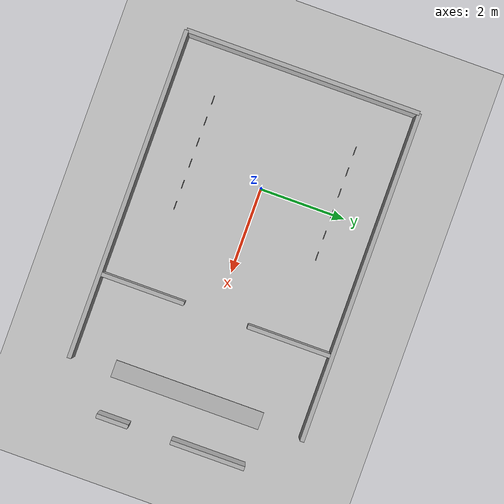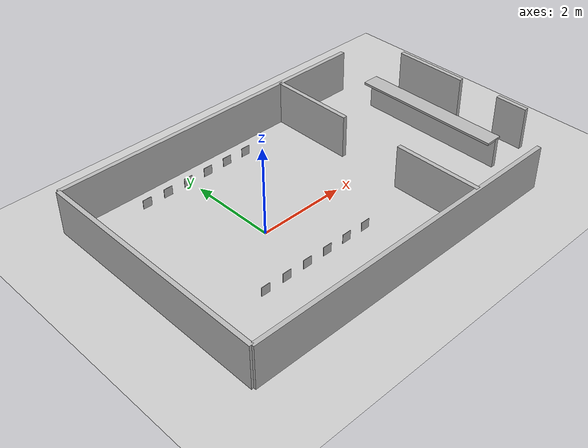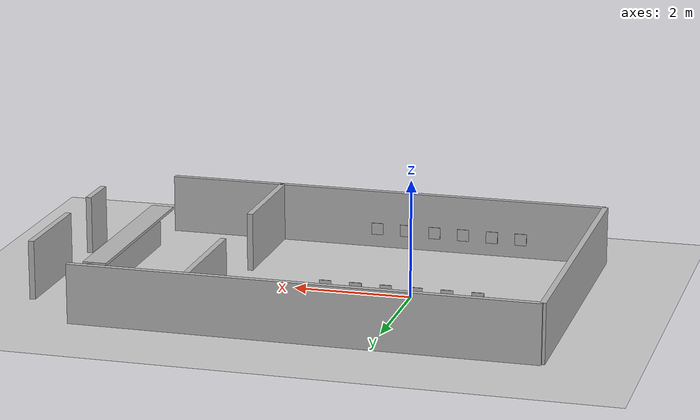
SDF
<sdf version="1.4">
 <world name="stockroom">
  <include><uri>model://sun</uri></include>
  <include><uri>model://ground_plane</uri></include>
  <model name="dhbeam_0_tag">
   <static>true</static>
   <pose>-1.5 -1.6875 0.63 0 0 3.1415</pose>
   <link name="link">
    <visual name="visual">
     <geometry><box><size>0.2 0.01 0.2</size></box></geometry>
     <material><script><uri>model://dhbeam/tags</uri><name>product_0</name></script></material>
    </visual>
   </link>
  </model>
  <model name="dhbeam_1_tag">
   <static>true</static>
   <pose>-1.0 -1.6875 0.63 0 0 3.1415</pose>
   <link name="link">
    <visual name="visual">
     <geometry><box><size>0.2 0.01 0.2</size></box></geometry>
     <material><script><uri>model://dhbeam/tags</uri><name>product_1</name></script></material>
    </visual>
   </link>
  </model>
  <model name="dhbeam_2_tag">
   <static>true</static>
   <pose>-0.5 -1.6875 0.63 0 0 3.1415</pose>
   <link name="link">
    <visual name="visual">
     <geometry><box><size>0.2 0.01 0.2</size></box></geometry>
     <material><script><uri>model://dhbeam/tags</uri><name>product_2</name></script></material>
    </visual>
   </link>
  </model>
  <model name="dhbeam_3_tag">
   <static>true</static>
   <pose>0.0 -1.6875 0.63 0 0 3.1415</pose>
   <link name="link">
    <visual name="visual">
     <geometry><box><size>0.2 0.01 0.2</size></box></geometry>
     <material><script><uri>model://dhbeam/tags</uri><name>product_3</name></script></material>
    </visual>
   </link>
  </model>
  <model name="dhbeam_4_tag">
   <static>true</static>
   <pose>0.5 -1.6875 0.63 0 0 3.1415</pose>
   <link name="link">
    <visual name="visual">
     <geometry><box><size>0.2 0.01 0.2</size></box></geometry>
     <material><script><uri>model://dhbeam/tags</uri><name>product_4</name></script></material>
    </visual>
   </link>
  </model>
  <model name="dhbeam_5_tag">
   <static>true</static>
   <pose>1.0 -1.6875 0.63 0 0 3.1415</pose>
   <link name="link">
    <visual name="visual">
     <geometry><box><size>0.2 0.01 0.2</size></box></geometry>
     <material><script><uri>model://dhbeam/tags</uri><name>product_5</name></script></material>
    </visual>
   </link>
  </model>
  <model name="dhbeam_6_tag">
   <static>true</static>
   <pose>-1.5 1.6875 0.63 0 0 0</pose>
   <link name="link">
    <visual name="visual">
     <geometry><box><size>0.2 0.01 0.2</size></box></geometry>
     <material><script><uri>model://dhbeam/tags</uri><name>product_6</name></script></material>
    </visual>
   </link>
  </model>
  <model name="dhbeam_7_tag">
   <static>true</static>
   <pose>-1.0 1.6875 0.63 0 0 0</pose>
   <link name="link">
    <visual name="visual">
     <geometry><box><size>0.2 0.01 0.2</size></box></geometry>
     <material><script><uri>model://dhbeam/tags</uri><name>product_7</name></script></material>
    </visual>
   </link>
  </model>
  <model name="dhbeam_8_tag">
   <static>true</static>
   <pose>-0.5 1.6875 0.63 0 0 0</pose>
   <link name="link">
    <visual name="visual">
     <geometry><box><size>0.2 0.01 0.2</size></box></geometry>
     <material><script><uri>model://dhbeam/tags</uri><name>product_8</name></script></material>
    </visual>
   </link>
  </model>
  <model name="dhbeam_9_tag">
   <static>true</static>
   <pose>0.0 1.6875 0.63 0 0 0</pose>
   <link name="link">
    <visual name="visual">
     <geometry><box><size>0.2 0.01 0.2</size></box></geometry>
     <material><script><uri>model://dhbeam/tags</uri><name>product_9</name></script></material>
    </visual>
   </link>
  </model>
  <model name="dhbeam_10_tag">
   <static>true</static>
   <pose>0.5 1.6875 0.63 0 0 0</pose>
   <link name="link">
    <visual name="visual">
     <geometry><box><size>0.2 0.01 0.2</size></box></geometry>
     <material><script><uri>model://dhbeam/tags</uri><name>product_10</name></script></material>
    </visual>
   </link>
  </model>
  <model name="dhbeam_11_tag">
   <static>true</static>
   <pose>1.0 1.6875 0.63 0 0 0</pose>
   <link name="link">
    <visual name="visual">
     <geometry><box><size>0.2 0.01 0.2</size></box></geometry>
     <material><script><uri>model://dhbeam/tags</uri><name>product_11</name></script></material>
    </visual>
   </link>
  </model>
  <model name="wall_1">
   <static>true</static>
   <pose>1.125 -2.75 0.5 0 0 0</pose>
   <link name="link">
    <collision name="collision"><geometry><box><size>7.75 0.1 1</size></box></geometry></collision>
    <visual name="visual"><geometry><box><size>7.75 0.1 1</size></box></geometry></visual>
   </link>
  </model>
  <model name="wall_2">
   <static>true</static>
   <pose>-2.75 0.0 0.5 0 0 0</pose>
   <link name="link">
    <collision name="collision"><geometry><box><size>0.1 5.5 1</size></box></geometry></collision>
    <visual name="visual"><geometry><box><size>0.1 5.5 1</size></box></geometry></visual>
   </link>
  </model>
  <model name="wall_3">
   <static>true</static>
   <pose>1.125 2.75 0.5 0 0 0</pose>
   <link name="link">
    <collision name="collision"><geometry><box><size>7.75 0.1 1</size></box></geometry></collision>
    <visual name="visual"><geometry><box><size>7.75 0.1 1</size></box></geometry></visual>
   </link>
  </model>
  <model name="wall_4">
   <static>true</static>
   <pose>3.0 1.75 0.5 0 0 0</pose>
   <link name="link">
    <collision name="collision"><geometry><box><size>0.1 2.0 1</size></box></geometry></collision>
    <visual name="visual"><geometry><box><size>0.1 2.0 1</size></box></geometry></visual>
   </link>
  </model>
  <model name="wall_5">
   <static>true</static>
   <pose>3.0 -1.75 0.5 0 0 0</pose>
   <link name="link">
    <collision name="collision"><geometry><box><size>0.1 2.0 1</size></box></geometry></collision>
    <visual name="visual"><geometry><box><size>0.1 2.0 1</size></box></geometry></visual>
   </link>
  </model>
  <model name="wall_6">
   <static>true</static>
   <pose>6.0 -1.375 0.5 0 0 0</pose>
   <link name="link">
    <collision name="collision"><geometry><box><size>0.1 0.75 1</size></box></geometry></collision>
    <visual name="visual"><geometry><box><size>0.1 0.75 1</size></box></geometry></visual>
   </link>
  </model>
  <model name="wall_7">
   <static>true</static>
   <pose>6.0 0.875 0.5 0 0 0</pose>
   <link name="link">
    <collision name="collision"><geometry><box><size>0.1 1.75 1</size></box></geometry></collision>
    <visual name="visual"><geometry><box><size>0.1 1.75 1</size></box></geometry></visual>
   </link>
  </model>
  <model name="wall_8">
   <static>true</static>
   <pose>5.0 0.0 0.35 0 0 0</pose>
   <link name="link">
    <collision name="collision"><geometry><box><size>0.1 3.5 0.7</size></box></geometry></collision>
    <visual name="visual"><geometry><box><size>0.1 3.5 0.7</size></box></geometry></visual>
   </link>
  </model>
  <model name="counter_top">
   <static>true</static>
   <pose>4.9 0 0.7 0 0 0</pose>
   <link name="link">
    <collision name="collision"><geometry><box><size>0.4 3.5 0.05</size></box></geometry></collision>
    <visual name="visual"><geometry><box><size>0.4 3.5 0.05</size></box></geometry></visual>
   </link>
  </model>
 </world>
</sdf>
